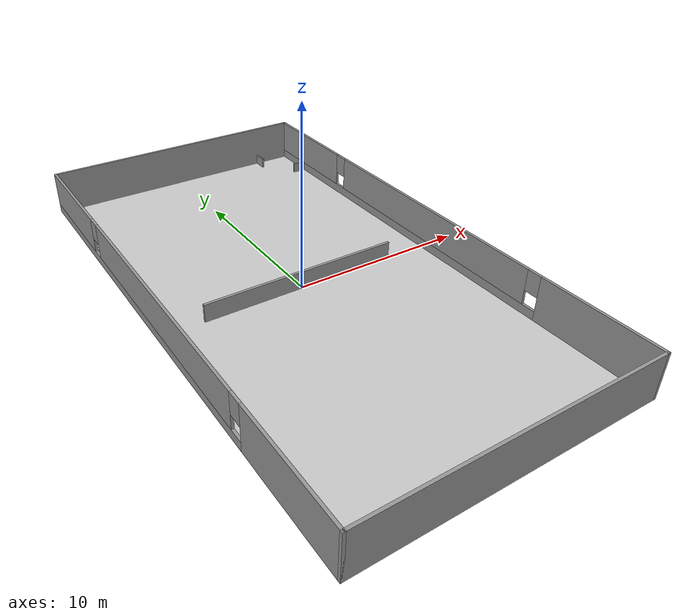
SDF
<?xml version="1.0" ?>
<sdf version="1.6">
    <world name="default">
        <scene>
            <sky>
                <clouds>
                    <speed>12</speed>
                </clouds>
            </sky>
            <grid>0</grid>
            <origin_visual>0</origin_visual>
        </scene>
        <include>
            <uri>model://sun</uri>
        </include>
        <include>
            <uri>model://tennis_court</uri>
        </include>
        <include>
            <pose>0 0 8 3.14159 1.57079 3.14159</pose>
            <uri>model://zenith_camera</uri>
        </include>

        <plugin name="gazebo_ros_state" filename="libgazebo_ros_state.so">
            <update_rate>10</update_rate>
        </plugin>
        <physics type="ode">
            <max_step_size>0.001</max_step_size>
        </physics>

        <gui>
            <plugin name="sample" filename="libgui_tennis_court_overlay.so"/>
            <camera name="camera">
                <pose>-22.73 23.81 24.92 0 0.7 -0.76</pose>
            </camera>
        </gui>
    </world>
</sdf>

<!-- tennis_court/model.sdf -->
<sdf version='1.6'>
    <model name='tennis_court'>
        <pose>0 0 0 0 -0 0</pose>
        <link name='Wall_0'>
            <pose>-8 0 0 0 -0 1.5708</pose>
            <visual name='Wall_0_Visual_0'>
                <pose>-11.7375 0 1.25 0 -0 0</pose>
                <geometry>
                    <box>
                        <size>6.675 0.15 2.5</size>
                    </box>
                </geometry>
                <material>
                    <script>
                        <uri>file://media/materials/scripts/gazebo.material</uri>
                        <name>Gazebo/Grey</name>
                    </script>
                    <ambient>1 1 1 1</ambient>
                </material>
                <meta>
                    <layer>0</layer>
                </meta>
            </visual>
            <collision name='Wall_0_Collision_0'>
                <geometry>
                    <box>
                        <size>6.675 0.15 2.5</size>
                    </box>
                </geometry>
                <pose>-11.7375 0 1.25 0 -0 0</pose>
            </collision>
            <visual name='Wall_0_Visual_1'>
                <pose>3.3375 0 0.25 0 -0 0</pose>
                <geometry>
                    <box>
                        <size>23.475 0.15 0.5</size>
                    </box>
                </geometry>
                <material>
                    <script>
                        <uri>file://media/materials/scripts/gazebo.material</uri>
                        <name>Gazebo/Grey</name>
                    </script>
                    <ambient>1 1 1 1</ambient>
                </material>
                <meta>
                    <layer>0</layer>
                </meta>
            </visual>
            <collision name='Wall_0_Collision_1'>
                <geometry>
                    <box>
                        <size>23.475 0.15 0.5</size>
                    </box>
                </geometry>
                <pose>3.3375 0 0.25 0 -0 0</pose>
            </collision>
            <visual name='Wall_0_Visual_2'>
                <pose>0 0 1.5 0 -0 0</pose>
                <geometry>
                    <box>
                        <size>15.2 0.15 2</size>
                    </box>
                </geometry>
                <material>
                    <script>
                        <uri>file://media/materials/scripts/gazebo.material</uri>
                        <name>Gazebo/Grey</name>
                    </script>
                    <ambient>1 1 1 1</ambient>
                </material>
                <meta>
                    <layer>0</layer>
                </meta>
            </visual>
            <collision name='Wall_0_Collision_2'>
                <geometry>
                    <box>
                        <size>15.2 0.15 2</size>
                    </box>
                </geometry>
                <pose>0 0 1.5 0 -0 0</pose>
            </collision>
            <visual name='Wall_0_Visual_3'>
                <pose>11.7375 0 1.5 0 -0 0</pose>
                <geometry>
                    <box>
                        <size>6.675 0.15 2</size>
                    </box>
                </geometry>
                <material>
                    <script>
                        <uri>file://media/materials/scripts/gazebo.material</uri>
                        <name>Gazebo/Grey</name>
                    </script>
                    <ambient>1 1 1 1</ambient>
                </material>
                <meta>
                    <layer>0</layer>
                </meta>
            </visual>
            <collision name='Wall_0_Collision_3'>
                <geometry>
                    <box>
                        <size>6.675 0.15 2</size>
                    </box>
                </geometry>
                <pose>11.7375 0 1.5 0 -0 0</pose>
            </collision>
            <visual name='Wall_0_Visual_4'>
                <pose>-8 0 1.9 0 -0 0</pose>
                <geometry>
                    <box>
                        <size>0.8 0.15 1.2</size>
                    </box>
                </geometry>
                <material>
                    <script>
                        <uri>file://media/materials/scripts/gazebo.material</uri>
                        <name>Gazebo/Grey</name>
                    </script>
                    <ambient>1 1 1 1</ambient>
                </material>
                <meta>
                    <layer>0</layer>
                </meta>
            </visual>
            <collision name='Wall_0_Collision_4'>
                <geometry>
                    <box>
                        <size>0.8 0.15 1.2</size>
                    </box>
                </geometry>
                <pose>-8 0 1.9 0 -0 0</pose>
            </collision>
            <visual name='Wall_0_Visual_5'>
                <pose>8 0 1.9 0 -0 0</pose>
                <geometry>
                    <box>
                        <size>0.8 0.15 1.2</size>
                    </box>
                </geometry>
                <material>
                    <script>
                        <uri>file://media/materials/scripts/gazebo.material</uri>
                        <name>Gazebo/Grey</name>
                    </script>
                    <ambient>1 1 1 1</ambient>
                </material>
                <meta>
                    <layer>0</layer>
                </meta>
            </visual>
            <collision name='Wall_0_Collision_5'>
                <geometry>
                    <box>
                        <size>0.8 0.15 1.2</size>
                    </box>
                </geometry>
                <pose>8 0 1.9 0 -0 0</pose>
            </collision>
        </link>
        <link name='Wall_4'>
            <collision name='Wall_4_Collision'>
                <geometry>
                    <box>
                        <size>16.15 0.15 2.5</size>
                    </box>
                </geometry>
                <pose>0 0 1.25 0 -0 0</pose>
            </collision>
            <visual name='Wall_4_Visual'>
                <pose>0 0 1.25 0 -0 0</pose>
                <geometry>
                    <box>
                        <size>16.15 0.15 2.5</size>
                    </box>
                </geometry>
                <material>
                    <script>
                        <uri>file://media/materials/scripts/gazebo.material</uri>
                        <name>Gazebo/Grey</name>
                    </script>
                    <ambient>1 1 1 1</ambient>
                </material>
                <meta>
                    <layer>0</layer>
                </meta>
            </visual>
            <pose>0 -15 0 0 -0 0</pose>
        </link>
        <link name='Wall_5'>
            <pose>8 0 0 0 -0 1.5708</pose>
            <visual name='Wall_5_Visual_0'>
                <pose>-11.7375 0 1.25 0 -0 0</pose>
                <geometry>
                    <box>
                        <size>6.675 0.15 2.5</size>
                    </box>
                </geometry>
                <material>
                    <script>
                        <uri>file://media/materials/scripts/gazebo.material</uri>
                        <name>Gazebo/Grey</name>
                    </script>
                    <ambient>1 1 1 1</ambient>
                </material>
                <meta>
                    <layer>0</layer>
                </meta>
            </visual>
            <collision name='Wall_5_Collision_0'>
                <geometry>
                    <box>
                        <size>6.675 0.15 2.5</size>
                    </box>
                </geometry>
                <pose>-11.7375 0 1.25 0 -0 0</pose>
            </collision>
            <visual name='Wall_5_Visual_1'>
                <pose>3.3375 0 0.25 0 -0 0</pose>
                <geometry>
                    <box>
                        <size>23.475 0.15 0.5</size>
                    </box>
                </geometry>
                <material>
                    <script>
                        <uri>file://media/materials/scripts/gazebo.material</uri>
                        <name>Gazebo/Grey</name>
                    </script>
                    <ambient>1 1 1 1</ambient>
                </material>
                <meta>
                    <layer>0</layer>
                </meta>
            </visual>
            <collision name='Wall_5_Collision_1'>
                <geometry>
                    <box>
                        <size>23.475 0.15 0.5</size>
                    </box>
                </geometry>
                <pose>3.3375 0 0.25 0 -0 0</pose>
            </collision>
            <visual name='Wall_5_Visual_2'>
                <pose>0 0 1.5 0 -0 0</pose>
                <geometry>
                    <box>
                        <size>15.2 0.15 2</size>
                    </box>
                </geometry>
                <material>
                    <script>
                        <uri>file://media/materials/scripts/gazebo.material</uri>
                        <name>Gazebo/Grey</name>
                    </script>
                    <ambient>1 1 1 1</ambient>
                </material>
                <meta>
                    <layer>0</layer>
                </meta>
            </visual>
            <collision name='Wall_5_Collision_2'>
                <geometry>
                    <box>
                        <size>15.2 0.15 2</size>
                    </box>
                </geometry>
                <pose>0 0 1.5 0 -0 0</pose>
            </collision>
            <visual name='Wall_5_Visual_3'>
                <pose>11.7375 0 1.5 0 -0 0</pose>
                <geometry>
                    <box>
                        <size>6.675 0.15 2</size>
                    </box>
                </geometry>
                <material>
                    <script>
                        <uri>file://media/materials/scripts/gazebo.material</uri>
                        <name>Gazebo/Grey</name>
                    </script>
                    <ambient>1 1 1 1</ambient>
                </material>
                <meta>
                    <layer>0</layer>
                </meta>
            </visual>
            <collision name='Wall_5_Collision_3'>
                <geometry>
                    <box>
                        <size>6.675 0.15 2</size>
                    </box>
                </geometry>
                <pose>11.7375 0 1.5 0 -0 0</pose>
            </collision>
            <visual name='Wall_5_Visual_4'>
                <pose>-8 0 1.9 0 -0 0</pose>
                <geometry>
                    <box>
                        <size>0.8 0.15 1.2</size>
                    </box>
                </geometry>
                <material>
                    <script>
                        <uri>file://media/materials/scripts/gazebo.material</uri>
                        <name>Gazebo/Grey</name>
                    </script>
                    <ambient>1 1 1 1</ambient>
                </material>
                <meta>
                    <layer>0</layer>
                </meta>
            </visual>
            <collision name='Wall_5_Collision_4'>
                <geometry>
                    <box>
                        <size>0.8 0.15 1.2</size>
                    </box>
                </geometry>
                <pose>-8 0 1.9 0 -0 0</pose>
            </collision>
            <visual name='Wall_5_Visual_5'>
                <pose>8 0 1.9 0 -0 0</pose>
                <geometry>
                    <box>
                        <size>0.8 0.15 1.2</size>
                    </box>
                </geometry>
                <material>
                    <script>
                        <uri>file://media/materials/scripts/gazebo.material</uri>
                        <name>Gazebo/Grey</name>
                    </script>
                    <ambient>1 1 1 1</ambient>
                </material>
                <meta>
                    <layer>0</layer>
                </meta>
            </visual>
            <collision name='Wall_5_Collision_5'>
                <geometry>
                    <box>
                        <size>0.8 0.15 1.2</size>
                    </box>
                </geometry>
                <pose>8 0 1.9 0 -0 0</pose>
            </collision>
        </link>
        <link name='Wall_6'>
            <collision name='Wall_6_Collision'>
                <geometry>
                    <box>
                        <size>16.15 0.15 2.5</size>
                    </box>
                </geometry>
                <pose>0 0 1.25 0 -0 0</pose>
            </collision>
            <visual name='Wall_6_Visual'>
                <pose>0 0 1.25 0 -0 0</pose>
                <geometry>
                    <box>
                        <size>16.15 0.15 2.5</size>
                    </box>
                </geometry>
                <material>
                    <script>
                        <uri>file://media/materials/scripts/gazebo.material</uri>
                        <name>Gazebo/Grey</name>
                    </script>
                    <ambient>1 1 1 1</ambient>
                </material>
                <meta>
                    <layer>0</layer>
                </meta>
            </visual>
            <pose>0 15 0 0 -0 3.14159</pose>
        </link>
        <link name='Wall_8'>
            <collision name='Wall_8_Collision'>
                <geometry>
                    <box>
                        <size>11.15 0.15 1</size>
                    </box>
                </geometry>
                <pose>0 0 0.5 0 -0 0</pose>
            </collision>
            <visual name='Wall_8_Visual'>
                <pose>0 0 0.5 0 -0 0</pose>
                <geometry>
                    <box>
                        <size>11.15 0.15 1</size>
                    </box>
                </geometry>
                <material>
                    <script>
                        <uri>file://media/materials/scripts/gazebo.material</uri>
                        <name>Gazebo/Grey</name>
                    </script>
                    <ambient>1 1 1 1</ambient>
                </material>
                <meta>
                    <layer>0</layer>
                </meta>
            </visual>
            <pose>0 0 0 0 -0 0</pose>
        </link>
        <link name='Wall_10'>
            <collision name='Wall_10_Collision_1'>
                <geometry>
                    <box>
                        <size>0.1 0.8 0.6</size>
                    </box>
                </geometry>
                <pose>5.73 14.516781 0.3 0 0 0</pose>
            </collision>
            <visual name='Wall_10_Visual_1'>
                <geometry>
                    <box>
                        <size>0.1 0.8 0.6</size>
                    </box>
                </geometry>
                <pose>5.73 14.516781 0.3 0 0 0</pose>
                <material>
                    <script>
                        <uri>file://media/materials/scripts/gazebo.material</uri>
                        <name>Gazebo/Grey</name>
                    </script>
                    <ambient>1 1 1 1</ambient>
                </material>
                <meta>
                    <layer>0</layer>
                </meta>
            </visual>
            <collision name='Wall_10_Collision_2'>
                <geometry>
                    <box>
                        <size>0.8 0.1 0.6</size>
                    </box>
                </geometry>
                <pose>7.525 12.33 0.3 0 0 0</pose>
            </collision>
            <visual name='Wall_10_Visual_2'>
                <geometry>
                    <box>
                        <size>0.8 0.1 0.6</size>
                    </box>
                </geometry>
                <pose>7.525 12.33 0.3 0 0 0</pose>
                <material>
                    <script>
                        <uri>file://media/materials/scripts/gazebo.material</uri>
                        <name>Gazebo/Grey</name>
                    </script>
                    <ambient>1 1 1 1</ambient>
                </material>
                <meta>
                    <layer>0</layer>
                </meta>
            </visual>
            <pose>0 0 0 0 0 0</pose>
        </link>
        <link name='Wall_11'>
            <collision name='Wall_11_Collision_1'>
                <geometry>
                    <box>
                        <size>0.1 0.8 0.6</size>
                    </box>
                </geometry>
                <pose>-5.73 -14.516781 0.3 0 0 0</pose>
            </collision>
            <visual name='Wall_11_Visual_1'>
                <geometry>
                    <box>
                        <size>0.1 0.8 0.6</size>
                    </box>
                </geometry>
                <pose>-5.73 -14.516781 0.3 0 0 0</pose>
                <material>
                    <script>
                        <uri>file://media/materials/scripts/gazebo.material</uri>
                        <name>Gazebo/Grey</name>
                    </script>
                    <ambient>1 1 1 1</ambient>
                </material>
                <meta>
                    <layer>0</layer>
                </meta>
            </visual>
            <collision name='Wall_11_Collision_2'>
                <geometry>
                    <box>
                        <size>0.8 0.1 0.6</size>
                    </box>
                </geometry>
                <pose>-7.525 -12.33 0.3 0 0 0</pose>
            </collision>
            <visual name='Wall_11_Visual_2'>
                <geometry>
                    <box>
                        <size>0.8 0.1 0.6</size>
                    </box>
                </geometry>
                <pose>-7.525 -12.33 0.3 0 0 0</pose>
                <material>
                    <script>
                        <uri>file://media/materials/scripts/gazebo.material</uri>
                        <name>Gazebo/Grey</name>
                    </script>
                    <ambient>1 1 1 1</ambient>
                </material>
                <meta>
                    <layer>0</layer>
                </meta>
            </visual>
            <pose>0 0 0 0 0 0</pose>
        </link>
        <link name="ground">
            <pose>0 0 0 0 0 1.57079</pose>
            <collision name="collision">
                <geometry>
                    <plane>
                        <normal>0 0 1</normal>
                        <size>30 16</size>
                    </plane>
                </geometry>
                <surface>
                    <friction>
                        <ode>
                            <mu>100</mu>
                            <mu2>50</mu2>
                        </ode>
                    </friction>
                </surface>
            </collision>
            <visual name="visual">
                <cast_shadows>false</cast_shadows>
                <geometry>
                    <plane>
                        <normal>0 0 1</normal>
                        <size>30 16</size>
                    </plane>
                </geometry>
                <material>
                    <script>
                        <uri>model://tennis_court/materials/scripts</uri>
                        <uri>model://tennis_court/materials/textures</uri>
                        <name>TennisCourtGround/Texture</name>
                    </script>
                </material>
            </visual>
        </link>
        <static>1</static>
    </model>
</sdf>

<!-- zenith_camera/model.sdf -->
<sdf version="1.6">
    <model name="zenith_camera">
        <pose>0 0 0 0 0 0</pose>
        <static>true</static>
        <link name="zenith_camera_link">
            <sensor name="zenith_camera" type="camera">
                <always_on>1</always_on>
                <update_rate>30</update_rate>
                <visualize>false</visualize>

                <camera name="zenith_camera">
                    <horizontal_fov>2.2</horizontal_fov>
                    <image>
                        <width>1280</width>
                        <height>720</height>
                    </image>
                    <clip>
                        <near>0.02</near>
                        <far>300</far>
                    </clip>
                </camera>

                <plugin name="zenith_camera_controller" filename="libgazebo_ros_camera.so">
                    <camera_name>zenith_camera</camera_name>
                    <hack_baseline>0.07</hack_baseline>
                </plugin>
            </sensor>
        </link>
    </model>
</sdf>
